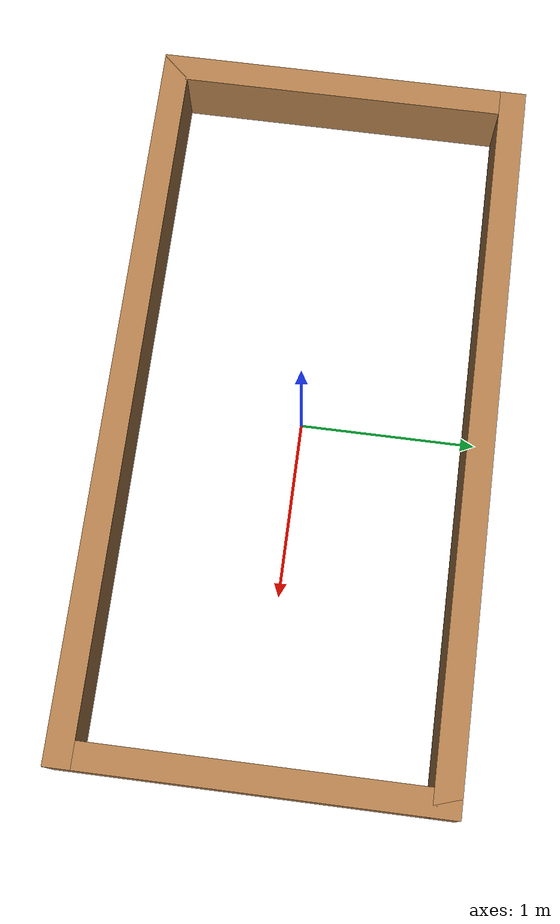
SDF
<?xml version='1.0'?>
<sdf version='1.7'>
  <model name='vera_world'>
    <pose>0 0 0 0 -0 0</pose>
    <link name='Wall_0'>
      <collision name='Wall_0_Collision'>
        <geometry>
          <box>
            <size>2.15 0.15 0.4</size>
          </box>
        </geometry>
        <pose>0 0 0.2 0 -0 0</pose>
      </collision>
      <visual name='Wall_0_Visual'>
        <pose>0 0 0.2 0 -0 0</pose>
        <geometry>
          <box>
            <size>2.15 0.15 0.4</size>
          </box>
        </geometry>
        <material>
          <script>
            <uri>file://media/materials/scripts/gazebo.material</uri>
            <name>Gazebo/Wood</name>
          </script>
          <ambient>1 1 1 1</ambient>
        </material>
        <meta>
          <layer>0</layer>
        </meta>
      </visual>
      <pose>-2 0 0 0 -0 -1.5708</pose>
    </link>
    <link name='Wall_1'>
      <collision name='Wall_1_Collision'>
        <geometry>
          <box>
            <size>4.15 0.15 0.4</size>
          </box>
        </geometry>
        <pose>0 0 0.2 0 -0 0</pose>
      </collision>
      <visual name='Wall_1_Visual'>
        <pose>0 0 0.2 0 -0 0</pose>
        <geometry>
          <box>
            <size>4.15 0.15 0.4</size>
          </box>
        </geometry>
        <material>
          <script>
            <uri>file://media/materials/scripts/gazebo.material</uri>
            <name>Gazebo/Wood</name>
          </script>
          <ambient>1 1 1 1</ambient>
        </material>
        <meta>
          <layer>0</layer>
        </meta>
      </visual>
      <pose>0 -1 0 0 -0 0</pose>
    </link>
    <link name='Wall_2'>
      <collision name='Wall_2_Collision'>
        <geometry>
          <box>
            <size>2.15 0.15 0.4</size>
          </box>
        </geometry>
        <pose>0 0 0.2 0 -0 0</pose>
      </collision>
      <visual name='Wall_2_Visual'>
        <pose>0 0 0.2 0 -0 0</pose>
        <geometry>
          <box>
            <size>2.15 0.15 0.4</size>
          </box>
        </geometry>
        <material>
          <script>
            <uri>file://media/materials/scripts/gazebo.material</uri>
            <name>Gazebo/Wood</name>
          </script>
          <ambient>1 1 1 1</ambient>
        </material>
        <meta>
          <layer>0</layer>
        </meta>
      </visual>
      <pose>2 0 0 0 -0 1.5708</pose>
    </link>
    <link name='Wall_3'>
      <collision name='Wall_3_Collision'>
        <geometry>
          <box>
            <size>4.15 0.15 0.4</size>
          </box>
        </geometry>
        <pose>0 0 0.2 0 -0 0</pose>
      </collision>
      <visual name='Wall_3_Visual'>
        <pose>0 0 0.2 0 -0 0</pose>
        <geometry>
          <box>
            <size>4.15 0.15 0.4</size>
          </box>
        </geometry>
        <material>
          <script>
            <uri>file://media/materials/scripts/gazebo.material</uri>
            <name>Gazebo/Wood</name>
          </script>
          <ambient>1 1 1 1</ambient>
        </material>
        <meta>
          <layer>0</layer>
        </meta>
      </visual>
      <pose>0 1 0 0 -0 3.14159</pose>
    </link>
    <static>1</static>
  </model>
</sdf>
